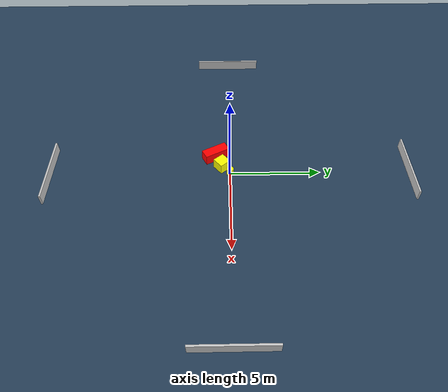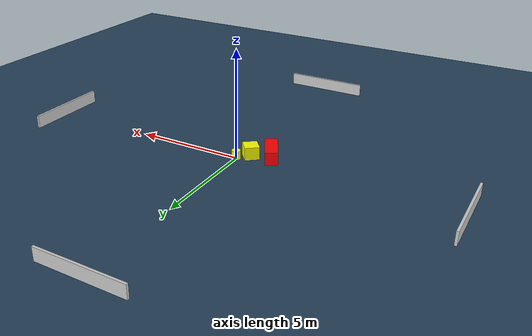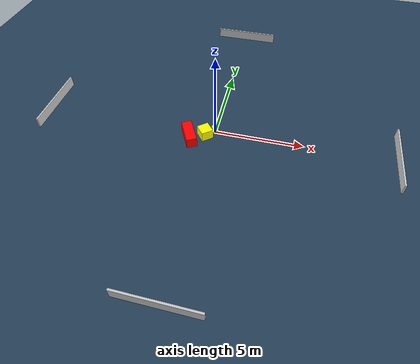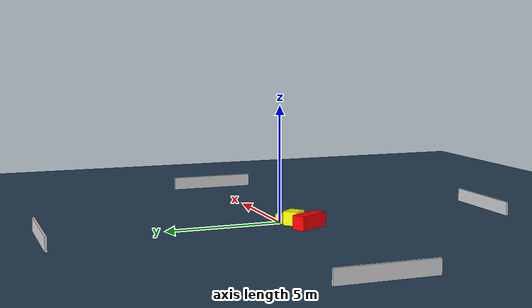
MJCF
<?xml version="1.0" ?>
<mujoco model="generated_environment">
  <option timestep="0.01" integrator="RK4" cone="elliptic"/>
  <default>
    <geom density="1"/>
  </default>
  <asset>
    <texture builtin="gradient" height="3072" name="skybox" rgb1="0.3 0.5 0.7" rgb2="0 0 0" type="skybox" width="512"/>
    <texture builtin="checker" height="300" name="groundplane" rgb1="0.2 0.3 0.4" rgb2="0.1 0.2 0.3" type="2d" width="300"/>
    <material name="groundplane" reflectance="0.2" texrepeat="5 5" texture="groundplane"/>
  </asset>
  <worldbody>
    <light dir="0 0 -1" directional="true" pos="0 0 1.5"/>
    <geom condim="3" friction="0.5 0.005 0.001" material="groundplane" name="floor" pos="0 0 0" size="0 0 0.05" type="plane"/>
    <body name="walls">
      <geom name="wall_1" condim="4" pos="-10.0 0.0 0.3" rgba="0.800000011920929 0.800000011920929 0.800000011920929 1.0" size="0.05 2.0 0.3" type="box"/>
      <geom name="wall_2" condim="4" pos="10.0 0.0 0.3" rgba="0.800000011920929 0.800000011920929 0.800000011920929 1.0" size="0.05 2.0 0.3" type="box"/>
      <geom name="wall_3" condim="4" pos="0.0 -10.0 0.3" rgba="0.800000011920929 0.800000011920929 0.800000011920929 1.0" size="2.0 0.05 0.3" type="box"/>
      <geom name="wall_4" condim="4" pos="0.0 10.0 0.3" rgba="0.800000011920929 0.800000011920929 0.800000011920929 1.0" size="2.0 0.05 0.3" type="box"/>
    </body>
    <body name="robot">
      <joint name="joint_x" type="slide" pos="0 0 0" axis="1 0 0"/>
      <joint name="joint_y" type="slide" pos="0 0 0" axis="0 1 0"/>
      <geom name="robot" type="cylinder" pos="0.0 0.0 0.2" size="0.2 0.2 0.0" mass="5.0" friction="1.0 0.005 0.0001" condim="4" rgba="1.0 1.0 0.0 1.0"/>
    </body>
    <body name="obstacle_1_movable">
      <geom name="obstacle_1_movable" condim="4" pos="-0.4892490593775059 -0.44434089662924686 0.3" euler="0 0 39.56743560293738" friction="0.0 0.005 0.001" rgba="1.0 1.0 0.0 1.0" size="0.3340262420843573 0.33588713235407397 0.3" type="box" mass="0.1"/>
      <joint type="free"/>
    </body>
    <body name="obstacle_2_static">
      <geom name="obstacle_2_static" condim="4" pos="-1.316437942804297 -0.8022011904621652 0.3" euler="0 0 297.9316021866671" friction="0.0 0.005 0.001" rgba="1.0 0.0 0.0 1.0" size="0.7283469195341075 0.2882699069524125 0.3" type="box"/>
    </body>
  </worldbody>
  <actuator>
    <motor name="actuator_x" joint="joint_x" gear="1" ctrlrange="-1 1"/>
    <motor name="actuator_y" joint="joint_y" gear="1" ctrlrange="-1 1"/>
  </actuator>
</mujoco>
